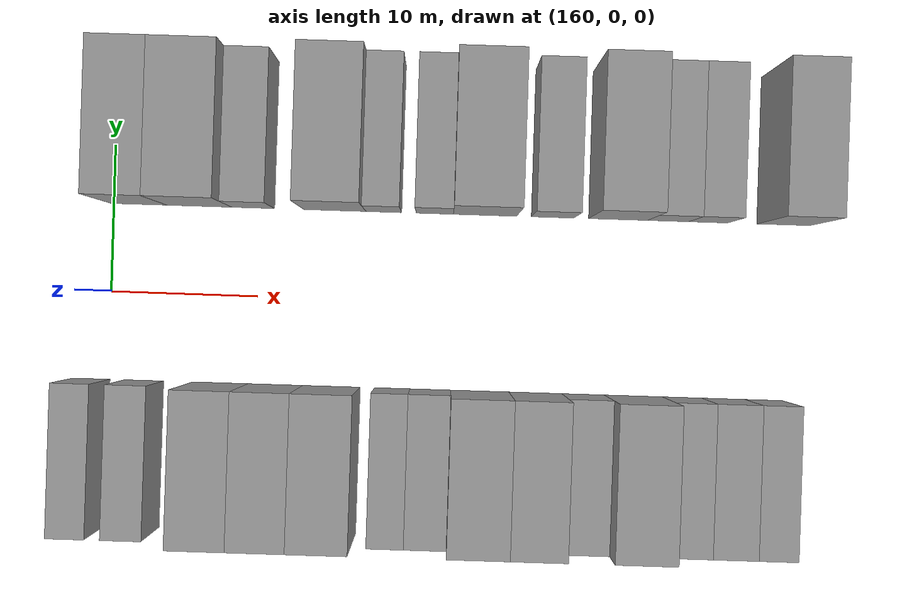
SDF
<sdf version="1.6">
 <world name="default">
  <model name="building_38">
   <static>1</static>
   <pose>161.7104 11.0000 0 0.000000 0.000000 1.570796</pose>
   <link name="link">
    <pose>0 0 4.50 0 0 0</pose>
    <collision name="collision"><geometry><box><size>10.0000 3.8222 9.0000</size></box></geometry></collision>
    <visual name="visual">
     <cast_shadows>0</cast_shadows>
     <geometry><box><size>10.0000 3.8222 9.0000</size></box></geometry>
     <material>
      <script>
       <uri>model://grey_wall/materials/scripts</uri>
       <uri>model://grey_wall/materials/textures</uri>
       <name>vrc/grey_wall</name>
      </script>
     </material>
    </visual>
   </link>
  </model>
  <model name="building_39">
   <static>1</static>
   <pose>165.8333 11.0000 0 0.000000 0.000000 1.570796</pose>
   <link name="link">
    <pose>0 0 4.50 0 0 0</pose>
    <collision name="collision"><geometry><box><size>10.0000 4.4237 9.0000</size></box></geometry></collision>
    <visual name="visual">
     <cast_shadows>0</cast_shadows>
     <geometry><box><size>10.0000 4.4237 9.0000</size></box></geometry>
     <material>
      <script>
       <uri>model://grey_wall/materials/scripts</uri>
       <uri>model://grey_wall/materials/textures</uri>
       <name>vrc/grey_wall</name>
      </script>
     </material>
    </visual>
   </link>
  </model>
  <model name="building_40">
   <static>1</static>
   <pose>169.4979 11.0000 0 0.000000 0.000000 1.570796</pose>
   <link name="link">
    <pose>0 0 3.00 0 0 0</pose>
    <collision name="collision"><geometry><box><size>10.0000 2.9054 6.0000</size></box></geometry></collision>
    <visual name="visual">
     <cast_shadows>0</cast_shadows>
     <geometry><box><size>10.0000 2.9054 6.0000</size></box></geometry>
     <material>
      <script>
       <uri>model://grey_wall/materials/scripts</uri>
       <uri>model://grey_wall/materials/textures</uri>
       <name>vrc/grey_wall</name>
      </script>
     </material>
    </visual>
   </link>
  </model>
  <model name="building_41">
   <static>1</static>
   <pose>175.0765 11.0000 0 0.000000 0.000000 1.570796</pose>
   <link name="link">
    <pose>0 0 4.50 0 0 0</pose>
    <collision name="collision"><geometry><box><size>10.0000 4.2518 9.0000</size></box></geometry></collision>
    <visual name="visual">
     <cast_shadows>0</cast_shadows>
     <geometry><box><size>10.0000 4.2518 9.0000</size></box></geometry>
     <material>
      <script>
       <uri>model://grey_wall/materials/scripts</uri>
       <uri>model://grey_wall/materials/textures</uri>
       <name>vrc/grey_wall</name>
      </script>
     </material>
    </visual>
   </link>
  </model>
  <model name="building_42">
   <static>1</static>
   <pose>178.4176 11.0000 0 0.000000 0.000000 1.570796</pose>
   <link name="link">
    <pose>0 0 3.00 0 0 0</pose>
    <collision name="collision"><geometry><box><size>10.0000 2.4305 6.0000</size></box></geometry></collision>
    <visual name="visual">
     <cast_shadows>0</cast_shadows>
     <geometry><box><size>10.0000 2.4305 6.0000</size></box></geometry>
     <material>
      <script>
       <uri>model://grey_wall/materials/scripts</uri>
       <uri>model://grey_wall/materials/textures</uri>
       <name>vrc/grey_wall</name>
      </script>
     </material>
    </visual>
   </link>
  </model>
  <model name="building_43">
   <static>1</static>
   <pose>181.8957 11.0000 0 0.000000 0.000000 1.570796</pose>
   <link name="link">
    <pose>0 0 3.00 0 0 0</pose>
    <collision name="collision"><geometry><box><size>10.0000 2.5256 6.0000</size></box></geometry></collision>
    <visual name="visual">
     <cast_shadows>0</cast_shadows>
     <geometry><box><size>10.0000 2.5256 6.0000</size></box></geometry>
     <material>
      <script>
       <uri>model://grey_wall/materials/scripts</uri>
       <uri>model://grey_wall/materials/textures</uri>
       <name>vrc/grey_wall</name>
      </script>
     </material>
    </visual>
   </link>
  </model>
  <model name="building_44">
   <static>1</static>
   <pose>185.3221 11.0000 0 0.000000 0.000000 1.570796</pose>
   <link name="link">
    <pose>0 0 4.50 0 0 0</pose>
    <collision name="collision"><geometry><box><size>10.0000 4.3272 9.0000</size></box></geometry></collision>
    <visual name="visual">
     <cast_shadows>0</cast_shadows>
     <geometry><box><size>10.0000 4.3272 9.0000</size></box></geometry>
     <material>
      <script>
       <uri>model://grey_wall/materials/scripts</uri>
       <uri>model://grey_wall/materials/textures</uri>
       <name>vrc/grey_wall</name>
      </script>
     </material>
    </visual>
   </link>
  </model>
  <model name="building_45">
   <static>1</static>
   <pose>189.9409 11.0000 0 0.000000 0.000000 1.570796</pose>
   <link name="link">
    <pose>0 0 3.00 0 0 0</pose>
    <collision name="collision"><geometry><box><size>10.0000 2.9104 6.0000</size></box></geometry></collision>
    <visual name="visual">
     <cast_shadows>0</cast_shadows>
     <geometry><box><size>10.0000 2.9104 6.0000</size></box></geometry>
     <material>
      <script>
       <uri>model://grey_wall/materials/scripts</uri>
       <uri>model://grey_wall/materials/textures</uri>
       <name>vrc/grey_wall</name>
      </script>
     </material>
    </visual>
   </link>
  </model>
  <model name="building_46">
   <static>1</static>
   <pose>194.3989 11.0000 0 0.000000 0.000000 1.570796</pose>
   <link name="link">
    <pose>0 0 4.50 0 0 0</pose>
    <collision name="collision"><geometry><box><size>10.0000 4.0056 9.0000</size></box></geometry></collision>
    <visual name="visual">
     <cast_shadows>0</cast_shadows>
     <geometry><box><size>10.0000 4.0056 9.0000</size></box></geometry>
     <material>
      <script>
       <uri>model://grey_wall/materials/scripts</uri>
       <uri>model://grey_wall/materials/textures</uri>
       <name>vrc/grey_wall</name>
      </script>
     </material>
    </visual>
   </link>
  </model>
  <model name="building_47">
   <static>1</static>
   <pose>197.8041 11.0000 0 0.000000 0.000000 1.570796</pose>
   <link name="link">
    <pose>0 0 3.00 0 0 0</pose>
    <collision name="collision"><geometry><box><size>10.0000 2.8049 6.0000</size></box></geometry></collision>
    <visual name="visual">
     <cast_shadows>0</cast_shadows>
     <geometry><box><size>10.0000 2.8049 6.0000</size></box></geometry>
     <material>
      <script>
       <uri>model://grey_wall/materials/scripts</uri>
       <uri>model://grey_wall/materials/textures</uri>
       <name>vrc/grey_wall</name>
      </script>
     </material>
    </visual>
   </link>
  </model>
  <model name="building_48">
   <static>1</static>
   <pose>200.5468 11.0000 0 0.000000 0.000000 1.570796</pose>
   <link name="link">
    <pose>0 0 3.00 0 0 0</pose>
    <collision name="collision"><geometry><box><size>10.0000 2.6804 6.0000</size></box></geometry></collision>
    <visual name="visual">
     <cast_shadows>0</cast_shadows>
     <geometry><box><size>10.0000 2.6804 6.0000</size></box></geometry>
     <material>
      <script>
       <uri>model://grey_wall/materials/scripts</uri>
       <uri>model://grey_wall/materials/textures</uri>
       <name>vrc/grey_wall</name>
      </script>
     </material>
    </visual>
   </link>
  </model>
  <model name="building_49">
   <static>1</static>
   <pose>205.6979 11.0000 0 0.000000 0.000000 1.570796</pose>
   <link name="link">
    <pose>0 0 4.50 0 0 0</pose>
    <collision name="collision"><geometry><box><size>10.0000 3.6218 9.0000</size></box></geometry></collision>
    <visual name="visual">
     <cast_shadows>0</cast_shadows>
     <geometry><box><size>10.0000 3.6218 9.0000</size></box></geometry>
     <material>
      <script>
       <uri>model://grey_wall/materials/scripts</uri>
       <uri>model://grey_wall/materials/textures</uri>
       <name>vrc/grey_wall</name>
      </script>
     </material>
    </visual>
   </link>
  </model>
  <model name="building_89">
   <static>1</static>
   <pose>158.8177 -11.0000 0 0.000000 0.000000 1.570796</pose>
   <link name="link">
    <pose>0 0 3.00 0 0 0</pose>
    <collision name="collision"><geometry><box><size>10.0000 2.5297 6.0000</size></box></geometry></collision>
    <visual name="visual">
     <cast_shadows>0</cast_shadows>
     <geometry><box><size>10.0000 2.5297 6.0000</size></box></geometry>
     <material>
      <script>
       <uri>model://grey_wall/materials/scripts</uri>
       <uri>model://grey_wall/materials/textures</uri>
       <name>vrc/grey_wall</name>
      </script>
     </material>
    </visual>
   </link>
  </model>
  <model name="building_90">
   <static>1</static>
   <pose>162.4156 -11.0000 0 0.000000 0.000000 1.570796</pose>
   <link name="link">
    <pose>0 0 3.00 0 0 0</pose>
    <collision name="collision"><geometry><box><size>10.0000 2.6662 6.0000</size></box></geometry></collision>
    <visual name="visual">
     <cast_shadows>0</cast_shadows>
     <geometry><box><size>10.0000 2.6662 6.0000</size></box></geometry>
     <material>
      <script>
       <uri>model://grey_wall/materials/scripts</uri>
       <uri>model://grey_wall/materials/textures</uri>
       <name>vrc/grey_wall</name>
      </script>
     </material>
    </visual>
   </link>
  </model>
  <model name="building_91">
   <static>1</static>
   <pose>167.6402 -11.0000 0 0.000000 0.000000 1.570796</pose>
   <link name="link">
    <pose>0 0 4.50 0 0 0</pose>
    <collision name="collision"><geometry><box><size>10.0000 3.7829 9.0000</size></box></geometry></collision>
    <visual name="visual">
     <cast_shadows>0</cast_shadows>
     <geometry><box><size>10.0000 3.7829 9.0000</size></box></geometry>
     <material>
      <script>
       <uri>model://grey_wall/materials/scripts</uri>
       <uri>model://grey_wall/materials/textures</uri>
       <name>vrc/grey_wall</name>
      </script>
     </material>
    </visual>
   </link>
  </model>
  <model name="building_92">
   <static>1</static>
   <pose>171.3986 -11.0000 0 0.000000 0.000000 1.570796</pose>
   <link name="link">
    <pose>0 0 4.50 0 0 0</pose>
    <collision name="collision"><geometry><box><size>10.0000 3.7339 9.0000</size></box></geometry></collision>
    <visual name="visual">
     <cast_shadows>0</cast_shadows>
     <geometry><box><size>10.0000 3.7339 9.0000</size></box></geometry>
     <material>
      <script>
       <uri>model://grey_wall/materials/scripts</uri>
       <uri>model://grey_wall/materials/textures</uri>
       <name>vrc/grey_wall</name>
      </script>
     </material>
    </visual>
   </link>
  </model>
  <model name="building_93">
   <static>1</static>
   <pose>175.2218 -11.0000 0 0.000000 0.000000 1.570796</pose>
   <link name="link">
    <pose>0 0 4.50 0 0 0</pose>
    <collision name="collision"><geometry><box><size>10.0000 3.9125 9.0000</size></box></geometry></collision>
    <visual name="visual">
     <cast_shadows>0</cast_shadows>
     <geometry><box><size>10.0000 3.9125 9.0000</size></box></geometry>
     <material>
      <script>
       <uri>model://grey_wall/materials/scripts</uri>
       <uri>model://grey_wall/materials/textures</uri>
       <name>vrc/grey_wall</name>
      </script>
     </material>
    </visual>
   </link>
  </model>
  <model name="building_94">
   <static>1</static>
   <pose>179.3802 -11.0000 0 0.000000 0.000000 1.570796</pose>
   <link name="link">
    <pose>0 0 3.00 0 0 0</pose>
    <collision name="collision"><geometry><box><size>10.0000 2.4042 6.0000</size></box></geometry></collision>
    <visual name="visual">
     <cast_shadows>0</cast_shadows>
     <geometry><box><size>10.0000 2.4042 6.0000</size></box></geometry>
     <material>
      <script>
       <uri>model://grey_wall/materials/scripts</uri>
       <uri>model://grey_wall/materials/textures</uri>
       <name>vrc/grey_wall</name>
      </script>
     </material>
    </visual>
   </link>
  </model>
  <model name="building_95">
   <static>1</static>
   <pose>181.9592 -11.0000 0 0.000000 0.000000 1.570796</pose>
   <link name="link">
    <pose>0 0 3.00 0 0 0</pose>
    <collision name="collision"><geometry><box><size>10.0000 2.7539 6.0000</size></box></geometry></collision>
    <visual name="visual">
     <cast_shadows>0</cast_shadows>
     <geometry><box><size>10.0000 2.7539 6.0000</size></box></geometry>
     <material>
      <script>
       <uri>model://grey_wall/materials/scripts</uri>
       <uri>model://grey_wall/materials/textures</uri>
       <name>vrc/grey_wall</name>
      </script>
     </material>
    </visual>
   </link>
  </model>
  <model name="building_96">
   <static>1</static>
   <pose>185.3280 -11.0000 0 0.000000 0.000000 1.570796</pose>
   <link name="link">
    <pose>0 0 4.50 0 0 0</pose>
    <collision name="collision"><geometry><box><size>10.0000 3.9837 9.0000</size></box></geometry></collision>
    <visual name="visual">
     <cast_shadows>0</cast_shadows>
     <geometry><box><size>10.0000 3.9837 9.0000</size></box></geometry>
     <material>
      <script>
       <uri>model://grey_wall/materials/scripts</uri>
       <uri>model://grey_wall/materials/textures</uri>
       <name>vrc/grey_wall</name>
      </script>
     </material>
    </visual>
   </link>
  </model>
  <model name="building_97">
   <static>1</static>
   <pose>189.1283 -11.0000 0 0.000000 0.000000 1.570796</pose>
   <link name="link">
    <pose>0 0 4.50 0 0 0</pose>
    <collision name="collision"><geometry><box><size>10.0000 3.6169 9.0000</size></box></geometry></collision>
    <visual name="visual">
     <cast_shadows>0</cast_shadows>
     <geometry><box><size>10.0000 3.6169 9.0000</size></box></geometry>
     <material>
      <script>
       <uri>model://grey_wall/materials/scripts</uri>
       <uri>model://grey_wall/materials/textures</uri>
       <name>vrc/grey_wall</name>
      </script>
     </material>
    </visual>
   </link>
  </model>
  <model name="building_98">
   <static>1</static>
   <pose>192.3875 -11.0000 0 0.000000 0.000000 1.570796</pose>
   <link name="link">
    <pose>0 0 3.00 0 0 0</pose>
    <collision name="collision"><geometry><box><size>10.0000 2.9014 6.0000</size></box></geometry></collision>
    <visual name="visual">
     <cast_shadows>0</cast_shadows>
     <geometry><box><size>10.0000 2.9014 6.0000</size></box></geometry>
     <material>
      <script>
       <uri>model://grey_wall/materials/scripts</uri>
       <uri>model://grey_wall/materials/textures</uri>
       <name>vrc/grey_wall</name>
      </script>
     </material>
    </visual>
   </link>
  </model>
  <model name="building_99">
   <static>1</static>
   <pose>195.8216 -11.0000 0 0.000000 0.000000 1.570796</pose>
   <link name="link">
    <pose>0 0 4.50 0 0 0</pose>
    <collision name="collision"><geometry><box><size>10.0000 3.9667 9.0000</size></box></geometry></collision>
    <visual name="visual">
     <cast_shadows>0</cast_shadows>
     <geometry><box><size>10.0000 3.9667 9.0000</size></box></geometry>
     <material>
      <script>
       <uri>model://grey_wall/materials/scripts</uri>
       <uri>model://grey_wall/materials/textures</uri>
       <name>vrc/grey_wall</name>
      </script>
     </material>
    </visual>
   </link>
  </model>
  <model name="building_100">
   <static>1</static>
   <pose>199.1478 -11.0000 0 0.000000 0.000000 1.570796</pose>
   <link name="link">
    <pose>0 0 3.00 0 0 0</pose>
    <collision name="collision"><geometry><box><size>10.0000 2.6857 6.0000</size></box></geometry></collision>
    <visual name="visual">
     <cast_shadows>0</cast_shadows>
     <geometry><box><size>10.0000 2.6857 6.0000</size></box></geometry>
     <material>
      <script>
       <uri>model://grey_wall/materials/scripts</uri>
       <uri>model://grey_wall/materials/textures</uri>
       <name>vrc/grey_wall</name>
      </script>
     </material>
    </visual>
   </link>
  </model>
  <model name="building_101">
   <static>1</static>
   <pose>201.9635 -11.0000 0 0.000000 0.000000 1.570796</pose>
   <link name="link">
    <pose>0 0 3.00 0 0 0</pose>
    <collision name="collision"><geometry><box><size>10.0000 2.9456 6.0000</size></box></geometry></collision>
    <visual name="visual">
     <cast_shadows>0</cast_shadows>
     <geometry><box><size>10.0000 2.9456 6.0000</size></box></geometry>
     <material>
      <script>
       <uri>model://grey_wall/materials/scripts</uri>
       <uri>model://grey_wall/materials/textures</uri>
       <name>vrc/grey_wall</name>
      </script>
     </material>
    </visual>
   </link>
  </model>
  <model name="building_102">
   <static>1</static>
   <pose>204.7170 -11.0000 0 0.000000 0.000000 1.570796</pose>
   <link name="link">
    <pose>0 0 3.00 0 0 0</pose>
    <collision name="collision"><geometry><box><size>10.0000 2.5614 6.0000</size></box></geometry></collision>
    <visual name="visual">
     <cast_shadows>0</cast_shadows>
     <geometry><box><size>10.0000 2.5614 6.0000</size></box></geometry>
     <material>
      <script>
       <uri>model://grey_wall/materials/scripts</uri>
       <uri>model://grey_wall/materials/textures</uri>
       <name>vrc/grey_wall</name>
      </script>
     </material>
    </visual>
   </link>
  </model>
 </world>
</sdf>
